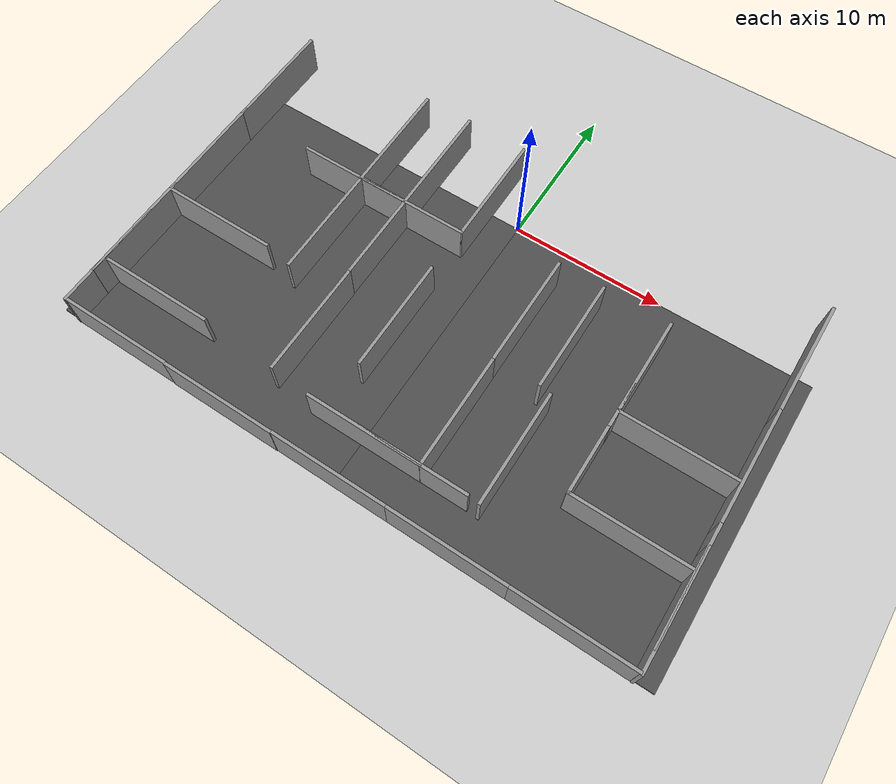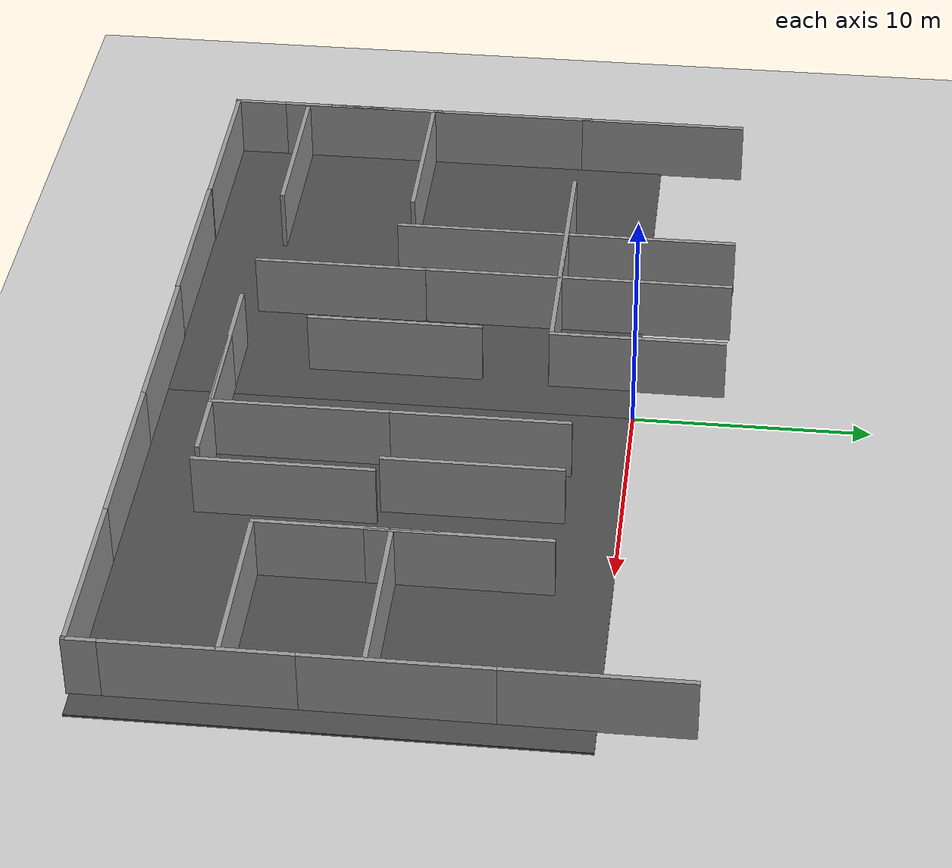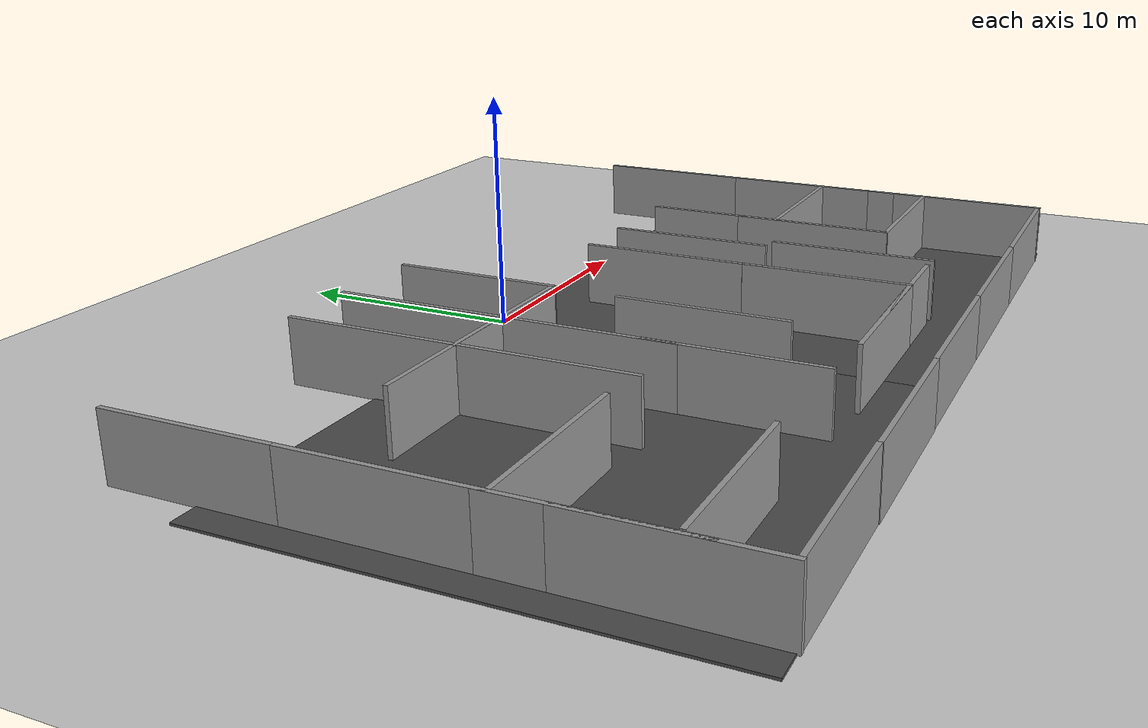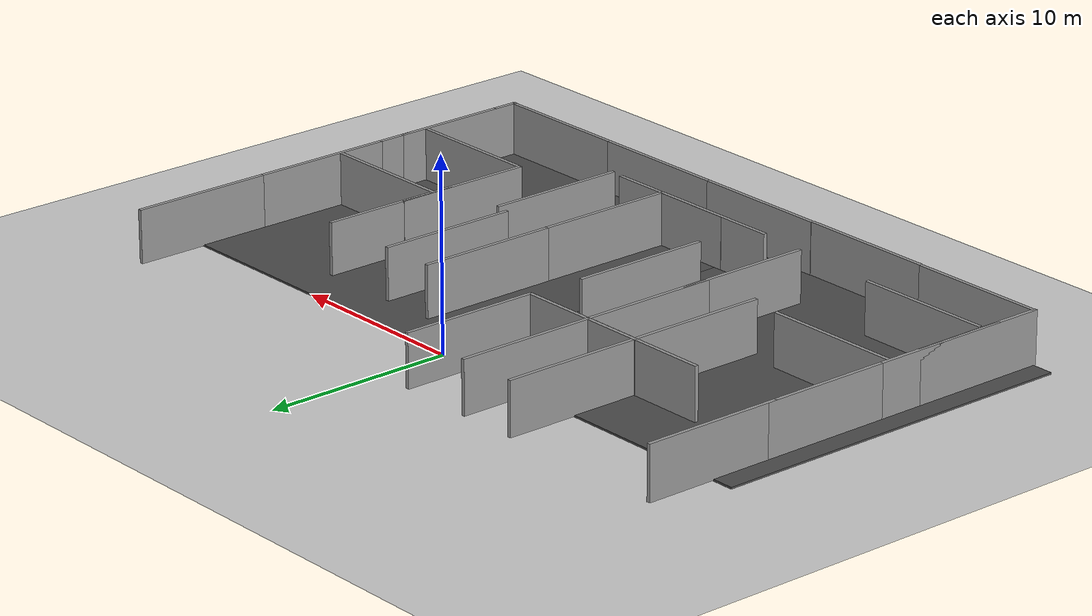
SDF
<sdf version="1.6">
 <world name="default">
  <model name="ground_plane">
   <static>1</static>
   <link name="link">
    <collision name="collision">
     <geometry><plane><normal>0 0 1</normal><size>100 100</size></plane></geometry>
     <surface><friction><ode><mu>100</mu><mu2>50</mu2></ode></friction></surface>
    </collision>
    <visual name="visual">
     <cast_shadows>0</cast_shadows>
     <geometry><plane><normal>0 0 1</normal><size>100 100</size></plane></geometry>
     <material>
      <script><uri>file://media/materials/scripts/gazebo.material</uri><name>Gazebo/Grey</name></script>
     </material>
    </visual>
   </link>
  </model>
  <model name="asphalt_plane">
   <static>1</static>
   <link name="link">
    <collision name="collision"><geometry><box><size>20 20 0.1</size></box></geometry></collision>
    <visual name="visual">
     <cast_shadows>0</cast_shadows>
     <geometry><box><size>20 20 0.1</size></box></geometry>
     <material>
      <script>
       <uri>model://asphalt_plane/materials/scripts</uri>
       <uri>model://asphalt_plane/materials/textures</uri>
       <name>vrc/asphalt</name>
      </script>
     </material>
    </visual>
   </link>
   <pose>10 -10 0 0 -0 0</pose>
  </model>
  <model name="asphalt_plane_clone_1">
   <static>1</static>
   <link name="link">
    <collision name="collision"><geometry><box><size>20 20 0.1</size></box></geometry></collision>
    <visual name="visual">
     <cast_shadows>0</cast_shadows>
     <geometry><box><size>20 20 0.1</size></box></geometry>
     <material>
      <script>
       <uri>model://asphalt_plane/materials/scripts</uri>
       <uri>model://asphalt_plane/materials/textures</uri>
       <name>vrc/asphalt</name>
      </script>
     </material>
    </visual>
   </link>
   <pose>-10 -10 0 0 -0 0</pose>
  </model>
  <model name="grey_wall_0_clone_1_clone">
   <static>1</static>
   <link name="link">
    <pose>0 0 1.4 0 -0 0</pose>
    <collision name="collision"><geometry><box><size>7.5 0.2 2.8</size></box></geometry></collision>
    <visual name="visual">
     <cast_shadows>0</cast_shadows>
     <geometry><box><size>7.5 0.2 2.8</size></box></geometry>
     <material>
      <script>
       <uri>model://grey_wall/materials/scripts</uri>
       <uri>model://grey_wall/materials/textures</uri>
       <name>vrc/grey_wall</name>
      </script>
     </material>
    </visual>
   </link>
   <pose>0 -20 0 0 -0 0</pose>
  </model>
  <model name="grey_wall_0_clone_1_clone_clone">
   <static>1</static>
   <link name="link">
    <pose>0 0 1.4 0 -0 0</pose>
    <collision name="collision"><geometry><box><size>7.5 0.2 2.8</size></box></geometry></collision>
    <visual name="visual">
     <cast_shadows>0</cast_shadows>
     <geometry><box><size>7.5 0.2 2.8</size></box></geometry>
     <material>
      <script>
       <uri>model://grey_wall/materials/scripts</uri>
       <uri>model://grey_wall/materials/textures</uri>
       <name>vrc/grey_wall</name>
      </script>
     </material>
    </visual>
   </link>
   <pose>7.5 -20 0 0 -0 0</pose>
  </model>
  <model name="grey_wall_0_clone_1_clone_clone_0">
   <static>1</static>
   <link name="link">
    <pose>0 0 1.4 0 -0 0</pose>
    <collision name="collision"><geometry><box><size>7.5 0.2 2.8</size></box></geometry></collision>
    <visual name="visual">
     <cast_shadows>0</cast_shadows>
     <geometry><box><size>7.5 0.2 2.8</size></box></geometry>
     <material>
      <script>
       <uri>model://grey_wall/materials/scripts</uri>
       <uri>model://grey_wall/materials/textures</uri>
       <name>vrc/grey_wall</name>
      </script>
     </material>
    </visual>
   </link>
   <pose>15 -20 0 0 -0 0</pose>
  </model>
  <model name="grey_wall_0_clone_1_clone_clone_1">
   <static>1</static>
   <link name="link">
    <pose>0 0 1.4 0 -0 0</pose>
    <collision name="collision"><geometry><box><size>7.5 0.2 2.8</size></box></geometry></collision>
    <visual name="visual">
     <cast_shadows>0</cast_shadows>
     <geometry><box><size>7.5 0.2 2.8</size></box></geometry>
     <material>
      <script>
       <uri>model://grey_wall/materials/scripts</uri>
       <uri>model://grey_wall/materials/textures</uri>
       <name>vrc/grey_wall</name>
      </script>
     </material>
    </visual>
   </link>
   <pose>-7.5 -20.0279 0 0 -0 0</pose>
  </model>
  <model name="grey_wall_0_clone_1_clone_clone_2">
   <static>1</static>
   <link name="link">
    <pose>0 0 1.4 0 -0 0</pose>
    <collision name="collision"><geometry><box><size>7.5 0.2 2.8</size></box></geometry></collision>
    <visual name="visual">
     <cast_shadows>0</cast_shadows>
     <geometry><box><size>7.5 0.2 2.8</size></box></geometry>
     <material>
      <script>
       <uri>model://grey_wall/materials/scripts</uri>
       <uri>model://grey_wall/materials/textures</uri>
       <name>vrc/grey_wall</name>
      </script>
     </material>
    </visual>
   </link>
   <pose>-15 -20 0 0 -0 0</pose>
  </model>
  <model name="grey_wall_0_clone_1_clone_clone_3">
   <static>1</static>
   <link name="link">
    <pose>0 0 1.4 0 -0 0</pose>
    <collision name="collision"><geometry><box><size>7.5 0.2 2.8</size></box></geometry></collision>
    <visual name="visual">
     <cast_shadows>0</cast_shadows>
     <geometry><box><size>7.5 0.2 2.8</size></box></geometry>
     <material>
      <script>
       <uri>model://grey_wall/materials/scripts</uri>
       <uri>model://grey_wall/materials/textures</uri>
       <name>vrc/grey_wall</name>
      </script>
     </material>
    </visual>
   </link>
   <pose>-18.75 0 0 0 -0 1.5708</pose>
  </model>
  <model name="grey_wall_0_clone_1_clone_clone_3_clone">
   <static>1</static>
   <link name="link">
    <pose>0 0 1.4 0 -0 0</pose>
    <collision name="collision"><geometry><box><size>7.5 0.2 2.8</size></box></geometry></collision>
    <visual name="visual">
     <cast_shadows>0</cast_shadows>
     <geometry><box><size>7.5 0.2 2.8</size></box></geometry>
     <material>
      <script>
       <uri>model://grey_wall/materials/scripts</uri>
       <uri>model://grey_wall/materials/textures</uri>
       <name>vrc/grey_wall</name>
      </script>
     </material>
    </visual>
   </link>
   <pose>-18.75 -7 0 0 -0 1.5708</pose>
  </model>
  <model name="grey_wall_0_clone_1_clone_clone_3_clone_0">
   <static>1</static>
   <link name="link">
    <pose>0 0 1.4 0 -0 0</pose>
    <collision name="collision"><geometry><box><size>7.5 0.2 2.8</size></box></geometry></collision>
    <visual name="visual">
     <cast_shadows>0</cast_shadows>
     <geometry><box><size>7.5 0.2 2.8</size></box></geometry>
     <material>
      <script>
       <uri>model://grey_wall/materials/scripts</uri>
       <uri>model://grey_wall/materials/textures</uri>
       <name>vrc/grey_wall</name>
      </script>
     </material>
    </visual>
   </link>
   <pose>-18.75 -14 0 0 -0 1.5708</pose>
  </model>
  <model name="grey_wall_0_clone_1_clone_clone_3_clone_0_clone">
   <static>1</static>
   <link name="link">
    <pose>0 0 1.4 0 -0 0</pose>
    <collision name="collision"><geometry><box><size>7.5 0.2 2.8</size></box></geometry></collision>
    <visual name="visual">
     <cast_shadows>0</cast_shadows>
     <geometry><box><size>7.5 0.2 2.8</size></box></geometry>
     <material>
      <script>
       <uri>model://grey_wall/materials/scripts</uri>
       <uri>model://grey_wall/materials/textures</uri>
       <name>vrc/grey_wall</name>
      </script>
     </material>
    </visual>
   </link>
   <pose>-18.75 -16.375 0 0 -0 1.5708</pose>
  </model>
  <model name="grey_wall_0_clone_1_clone_clone_3_clone_2_clone_clone_0">
   <static>1</static>
   <link name="link">
    <pose>0 0 1.4 0 -0 0</pose>
    <collision name="collision"><geometry><box><size>7.5 0.2 2.8</size></box></geometry></collision>
    <visual name="visual">
     <cast_shadows>0</cast_shadows>
     <geometry><box><size>7.5 0.2 2.8</size></box></geometry>
     <material>
      <script>
       <uri>model://grey_wall/materials/scripts</uri>
       <uri>model://grey_wall/materials/textures</uri>
       <name>vrc/grey_wall</name>
      </script>
     </material>
    </visual>
   </link>
   <pose>18.75 0 0 0 -0 1.5708</pose>
  </model>
  <model name="grey_wall_0_clone_1_clone_clone_3_clone_2_clone_clone_3">
   <static>1</static>
   <link name="link">
    <pose>0 0 1.4 0 -0 0</pose>
    <collision name="collision"><geometry><box><size>7.5 0.2 2.8</size></box></geometry></collision>
    <visual name="visual">
     <cast_shadows>0</cast_shadows>
     <geometry><box><size>7.5 0.2 2.8</size></box></geometry>
     <material>
      <script>
       <uri>model://grey_wall/materials/scripts</uri>
       <uri>model://grey_wall/materials/textures</uri>
       <name>vrc/grey_wall</name>
      </script>
     </material>
    </visual>
   </link>
   <pose>18.75 -7.5 0 0 -0 1.5708</pose>
  </model>
  <model name="grey_wall_0_clone_1_clone_clone_3_clone_2_clone_clone_4">
   <static>1</static>
   <link name="link">
    <pose>0 0 1.4 0 -0 0</pose>
    <collision name="collision"><geometry><box><size>7.5 0.2 2.8</size></box></geometry></collision>
    <visual name="visual">
     <cast_shadows>0</cast_shadows>
     <geometry><box><size>7.5 0.2 2.8</size></box></geometry>
     <material>
      <script>
       <uri>model://grey_wall/materials/scripts</uri>
       <uri>model://grey_wall/materials/textures</uri>
       <name>vrc/grey_wall</name>
      </script>
     </material>
    </visual>
   </link>
   <pose>18.75 -15 0 0 -0 1.5708</pose>
  </model>
  <model name="grey_wall_0_clone_1_clone_clone_3_clone_2_clone_clone_5">
   <static>1</static>
   <link name="link">
    <pose>0 0 1.4 0 -0 0</pose>
    <collision name="collision"><geometry><box><size>7.5 0.2 2.8</size></box></geometry></collision>
    <visual name="visual">
     <cast_shadows>0</cast_shadows>
     <geometry><box><size>7.5 0.2 2.8</size></box></geometry>
     <material>
      <script>
       <uri>model://grey_wall/materials/scripts</uri>
       <uri>model://grey_wall/materials/textures</uri>
       <name>vrc/grey_wall</name>
      </script>
     </material>
    </visual>
   </link>
   <pose>18.75 -16.375 0 0 -0 1.5708</pose>
  </model>
  <model name="grey_wall_0_clone_1_clone_clone_3_clone_0_clone_0">
   <static>1</static>
   <link name="link">
    <pose>0 0 1.4 0 -0 0</pose>
    <collision name="collision"><geometry><box><size>7.5 0.2 2.8</size></box></geometry></collision>
    <visual name="visual">
     <cast_shadows>0</cast_shadows>
     <geometry><box><size>7.5 0.2 2.8</size></box></geometry>
     <material>
      <script>
       <uri>model://grey_wall/materials/scripts</uri>
       <uri>model://grey_wall/materials/textures</uri>
       <name>vrc/grey_wall</name>
      </script>
     </material>
    </visual>
   </link>
   <pose>-2 0 0 0 -0 1.5708</pose>
  </model>
  <model name="grey_wall_0_clone_1_clone_clone_3_clone_0_clone_0_clone">
   <static>1</static>
   <link name="link">
    <pose>0 0 1.4 0 -0 0</pose>
    <collision name="collision"><geometry><box><size>7.5 0.2 2.8</size></box></geometry></collision>
    <visual name="visual">
     <cast_shadows>0</cast_shadows>
     <geometry><box><size>7.5 0.2 2.8</size></box></geometry>
     <material>
      <script>
       <uri>model://grey_wall/materials/scripts</uri>
       <uri>model://grey_wall/materials/textures</uri>
       <name>vrc/grey_wall</name>
      </script>
     </material>
    </visual>
   </link>
   <pose>4 -6 0 0 -0 1.5708</pose>
  </model>
  <model name="grey_wall_0_clone_1_clone_clone_3_clone_2_clone_clone_0_clone">
   <static>1</static>
   <link name="link">
    <pose>0 0 1.4 0 -0 0</pose>
    <collision name="collision"><geometry><box><size>7.5 0.2 2.8</size></box></geometry></collision>
    <visual name="visual">
     <cast_shadows>0</cast_shadows>
     <geometry><box><size>7.5 0.2 2.8</size></box></geometry>
     <material>
      <script>
       <uri>model://grey_wall/materials/scripts</uri>
       <uri>model://grey_wall/materials/textures</uri>
       <name>vrc/grey_wall</name>
      </script>
     </material>
    </visual>
   </link>
   <pose>7 -6 0 0 -0 1.5708</pose>
  </model>
  <model name="grey_wall_0_clone_1_clone_clone_3_clone_2_clone_clone_0_clone_0">
   <static>1</static>
   <link name="link">
    <pose>0 0 1.4 0 -0 0</pose>
    <collision name="collision"><geometry><box><size>7.5 0.2 2.8</size></box></geometry></collision>
    <visual name="visual">
     <cast_shadows>0</cast_shadows>
     <geometry><box><size>7.5 0.2 2.8</size></box></geometry>
     <material>
      <script>
       <uri>model://grey_wall/materials/scripts</uri>
       <uri>model://grey_wall/materials/textures</uri>
       <name>vrc/grey_wall</name>
      </script>
     </material>
    </visual>
   </link>
   <pose>11.3625 -6 0 0 -0 1.5708</pose>
  </model>
  <model name="grey_wall_0_clone_1_clone_clone_3_clone_0_clone_0_clone_1">
   <static>1</static>
   <link name="link">
    <pose>0 0 1.4 0 -0 0</pose>
    <collision name="collision"><geometry><box><size>7.5 0.2 2.8</size></box></geometry></collision>
    <visual name="visual">
     <cast_shadows>0</cast_shadows>
     <geometry><box><size>7.5 0.2 2.8</size></box></geometry>
     <material>
      <script>
       <uri>model://grey_wall/materials/scripts</uri>
       <uri>model://grey_wall/materials/textures</uri>
       <name>vrc/grey_wall</name>
      </script>
     </material>
    </visual>
   </link>
   <pose>7.77461 -13.5442 0 0 -0 1.5708</pose>
  </model>
  <model name="grey_wall_0_clone_1_clone_clone_3_clone_0_clone_0_clone_2">
   <static>1</static>
   <link name="link">
    <pose>0 0 1.4 0 -0 0</pose>
    <collision name="collision"><geometry><box><size>7.5 0.2 2.8</size></box></geometry></collision>
    <visual name="visual">
     <cast_shadows>0</cast_shadows>
     <geometry><box><size>7.5 0.2 2.8</size></box></geometry>
     <material>
      <script>
       <uri>model://grey_wall/materials/scripts</uri>
       <uri>model://grey_wall/materials/textures</uri>
       <name>vrc/grey_wall</name>
      </script>
     </material>
    </visual>
   </link>
   <pose>4.0105 -13.4927 0 0 -0 1.5708</pose>
  </model>
  <model name="grey_wall_0_clone_1_clone_clone_3_clone_0_clone_0_clone_3">
   <static>1</static>
   <link name="link">
    <pose>0 0 1.4 0 -0 0</pose>
    <collision name="collision"><geometry><box><size>7.5 0.2 2.8</size></box></geometry></collision>
    <visual name="visual">
     <cast_shadows>0</cast_shadows>
     <geometry><box><size>7.5 0.2 2.8</size></box></geometry>
     <material>
      <script>
       <uri>model://grey_wall/materials/scripts</uri>
       <uri>model://grey_wall/materials/textures</uri>
       <name>vrc/grey_wall</name>
      </script>
     </material>
    </visual>
   </link>
   <pose>11.3469 -10.4879 0 0 -0 1.5708</pose>
  </model>
  <model name="grey_wall_0_clone_1_clone_0_clone">
   <static>1</static>
   <link name="link">
    <pose>0 0 1.4 0 -0 0</pose>
    <collision name="collision"><geometry><box><size>7.5 0.2 2.8</size></box></geometry></collision>
    <visual name="visual">
     <cast_shadows>0</cast_shadows>
     <geometry><box><size>7.5 0.2 2.8</size></box></geometry>
     <material>
      <script>
       <uri>model://grey_wall/materials/scripts</uri>
       <uri>model://grey_wall/materials/textures</uri>
       <name>vrc/grey_wall</name>
      </script>
     </material>
    </visual>
   </link>
   <pose>15 -8.66916 0 0 -0 0</pose>
  </model>
  <model name="grey_wall_0_clone_1_clone_0_clone_0">
   <static>1</static>
   <link name="link">
    <pose>0 0 1.4 0 -0 0</pose>
    <collision name="collision"><geometry><box><size>7.5 0.2 2.8</size></box></geometry></collision>
    <visual name="visual">
     <cast_shadows>0</cast_shadows>
     <geometry><box><size>7.5 0.2 2.8</size></box></geometry>
     <material>
      <script>
       <uri>model://grey_wall/materials/scripts</uri>
       <uri>model://grey_wall/materials/textures</uri>
       <name>vrc/grey_wall</name>
      </script>
     </material>
    </visual>
   </link>
   <pose>15.0358 -14.1705 0 0 -0 0</pose>
  </model>
  <model name="grey_wall_0_clone_1_clone_0_clone_1">
   <static>1</static>
   <link name="link">
    <pose>0 0 1.4 0 -0 0</pose>
    <collision name="collision"><geometry><box><size>7.5 0.2 2.8</size></box></geometry></collision>
    <visual name="visual">
     <cast_shadows>0</cast_shadows>
     <geometry><box><size>7.5 0.2 2.8</size></box></geometry>
     <material>
      <script>
       <uri>model://grey_wall/materials/scripts</uri>
       <uri>model://grey_wall/materials/textures</uri>
       <name>vrc/grey_wall</name>
      </script>
     </material>
    </visual>
   </link>
   <pose>-5.73771 -3.66191 0 0 -0 0</pose>
  </model>
  <model name="grey_wall_0_clone_1_clone_clone_3_clone_0_clone_0_clone_4">
   <static>1</static>
   <link name="link">
    <pose>0 0 1.4 0 -0 0</pose>
    <collision name="collision"><geometry><box><size>7.5 0.2 2.8</size></box></geometry></collision>
    <visual name="visual">
     <cast_shadows>0</cast_shadows>
     <geometry><box><size>7.5 0.2 2.8</size></box></geometry>
     <material>
      <script>
       <uri>model://grey_wall/materials/scripts</uri>
       <uri>model://grey_wall/materials/textures</uri>
       <name>vrc/grey_wall</name>
      </script>
     </material>
    </visual>
   </link>
   <pose>-6.09062 -7.35569 0 0 -0 1.5708</pose>
  </model>
  <model name="grey_wall_0_clone_1_clone_clone_3_clone_0_clone_0_clone_5">
   <static>1</static>
   <link name="link">
    <pose>0 0 1.4 0 -0 0</pose>
    <collision name="collision"><geometry><box><size>7.5 0.2 2.8</size></box></geometry></collision>
    <visual name="visual">
     <cast_shadows>0</cast_shadows>
     <geometry><box><size>7.5 0.2 2.8</size></box></geometry>
     <material>
      <script>
       <uri>model://grey_wall/materials/scripts</uri>
       <uri>model://grey_wall/materials/textures</uri>
       <name>vrc/grey_wall</name>
      </script>
     </material>
    </visual>
   </link>
   <pose>-2.14639 -10.3679 0 0 -0 1.5708</pose>
  </model>
  <model name="grey_wall_0_clone_1_clone_0_clone_1_clone">
   <static>1</static>
   <link name="link">
    <pose>0 0 1.4 0 -0 0</pose>
    <collision name="collision"><geometry><box><size>7.5 0.2 2.8</size></box></geometry></collision>
    <visual name="visual">
     <cast_shadows>0</cast_shadows>
     <geometry><box><size>7.5 0.2 2.8</size></box></geometry>
     <material>
      <script>
       <uri>model://grey_wall/materials/scripts</uri>
       <uri>model://grey_wall/materials/textures</uri>
       <name>vrc/grey_wall</name>
      </script>
     </material>
    </visual>
   </link>
   <pose>0.27029 -17.1653 0 0 -0 0</pose>
  </model>
  <model name="grey_wall_0_clone_1_clone_clone_3_clone_0_clone_0_clone_4_clone">
   <static>1</static>
   <link name="link">
    <pose>0 0 1.4 0 -0 0</pose>
    <collision name="collision"><geometry><box><size>7.5 0.2 2.8</size></box></geometry></collision>
    <visual name="visual">
     <cast_shadows>0</cast_shadows>
     <geometry><box><size>7.5 0.2 2.8</size></box></geometry>
     <material>
      <script>
       <uri>model://grey_wall/materials/scripts</uri>
       <uri>model://grey_wall/materials/textures</uri>
       <name>vrc/grey_wall</name>
      </script>
     </material>
    </visual>
   </link>
   <pose>-6.07335 -13.2752 0 0 -0 1.5708</pose>
  </model>
  <model name="grey_wall_0_clone_1_clone_clone_3_clone_0_clone_0_clone_4_clone_0">
   <static>1</static>
   <link name="link">
    <pose>0 0 1.4 0 -0 0</pose>
    <collision name="collision"><geometry><box><size>7.5 0.2 2.8</size></box></geometry></collision>
    <visual name="visual">
     <cast_shadows>0</cast_shadows>
     <geometry><box><size>7.5 0.2 2.8</size></box></geometry>
     <material>
      <script>
       <uri>model://grey_wall/materials/scripts</uri>
       <uri>model://grey_wall/materials/textures</uri>
       <name>vrc/grey_wall</name>
      </script>
     </material>
    </visual>
   </link>
   <pose>-9.34959 -7.44161 0 0 -0 1.5708</pose>
  </model>
  <model name="grey_wall_0_clone_1_clone_0_clone_1_clone_0">
   <static>1</static>
   <link name="link">
    <pose>0 0 1.4 0 -0 0</pose>
    <collision name="collision"><geometry><box><size>7.5 0.2 2.8</size></box></geometry></collision>
    <visual name="visual">
     <cast_shadows>0</cast_shadows>
     <geometry><box><size>7.5 0.2 2.8</size></box></geometry>
     <material>
      <script>
       <uri>model://grey_wall/materials/scripts</uri>
       <uri>model://grey_wall/materials/textures</uri>
       <name>vrc/grey_wall</name>
      </script>
     </material>
    </visual>
   </link>
   <pose>-14.9114 -10.7614 0 0 -0 0</pose>
  </model>
  <model name="grey_wall_0_clone_1_clone_0_clone_1_clone_1">
   <static>1</static>
   <link name="link">
    <pose>0 0 1.4 0 -0 0</pose>
    <collision name="collision"><geometry><box><size>7.5 0.2 2.8</size></box></geometry></collision>
    <visual name="visual">
     <cast_shadows>0</cast_shadows>
     <geometry><box><size>7.5 0.2 2.8</size></box></geometry>
     <material>
      <script>
       <uri>model://grey_wall/materials/scripts</uri>
       <uri>model://grey_wall/materials/textures</uri>
       <name>vrc/grey_wall</name>
      </script>
     </material>
    </visual>
   </link>
   <pose>3.32552 -17.1515 0 0 -0 0</pose>
  </model>
  <model name="grey_wall_0_clone_1_clone_0_clone_1_clone_0_clone">
   <static>1</static>
   <link name="link">
    <pose>0 0 1.4 0 -0 0</pose>
    <collision name="collision"><geometry><box><size>7.5 0.2 2.8</size></box></geometry></collision>
    <visual name="visual">
     <cast_shadows>0</cast_shadows>
     <geometry><box><size>7.5 0.2 2.8</size></box></geometry>
     <material>
      <script>
       <uri>model://grey_wall/materials/scripts</uri>
       <uri>model://grey_wall/materials/textures</uri>
       <name>vrc/grey_wall</name>
      </script>
     </material>
    </visual>
   </link>
   <pose>-14.8258 -16.6713 0 0 -0 0</pose>
  </model>
  <model name="grey_wall_0_clone_1_clone_clone_3_clone_0_clone_0_clone_6">
   <static>1</static>
   <link name="link">
    <pose>0 0 1.4 0 -0 0</pose>
    <collision name="collision"><geometry><box><size>7.5 0.2 2.8</size></box></geometry></collision>
    <visual name="visual">
     <cast_shadows>0</cast_shadows>
     <geometry><box><size>7.5 0.2 2.8</size></box></geometry>
     <material>
      <script>
       <uri>model://grey_wall/materials/scripts</uri>
       <uri>model://grey_wall/materials/textures</uri>
       <name>vrc/grey_wall</name>
      </script>
     </material>
    </visual>
   </link>
   <pose>-6.10865 0.052874 0 0 -0 1.5708</pose>
  </model>
  <model name="grey_wall_0_clone_1_clone_0_clone_1_clone_2_clone">
   <static>1</static>
   <link name="link">
    <pose>0 0 1.4 0 -0 0</pose>
    <collision name="collision"><geometry><box><size>7.5 0.2 2.8</size></box></geometry></collision>
    <visual name="visual">
     <cast_shadows>0</cast_shadows>
     <geometry><box><size>7.5 0.2 2.8</size></box></geometry>
     <material>
      <script>
       <uri>model://grey_wall/materials/scripts</uri>
       <uri>model://grey_wall/materials/textures</uri>
       <name>vrc/grey_wall</name>
      </script>
     </material>
    </visual>
   </link>
   <pose>-9.85316 -3.67224 0 0 -0 0</pose>
  </model>
  <model name="grey_wall_0_clone_1_clone_clone_3_clone_0_clone_0_clone_6_clone">
   <static>1</static>
   <link name="link">
    <pose>0 0 1.4 0 -0 0</pose>
    <collision name="collision"><geometry><box><size>7.5 0.2 2.8</size></box></geometry></collision>
    <visual name="visual">
     <cast_shadows>0</cast_shadows>
     <geometry><box><size>7.5 0.2 2.8</size></box></geometry>
     <material>
      <script>
       <uri>model://grey_wall/materials/scripts</uri>
       <uri>model://grey_wall/materials/textures</uri>
       <name>vrc/grey_wall</name>
      </script>
     </material>
    </visual>
   </link>
   <pose>-9.35367 0.046738 0 0 -0 1.5708</pose>
  </model>
 </world>
</sdf>
